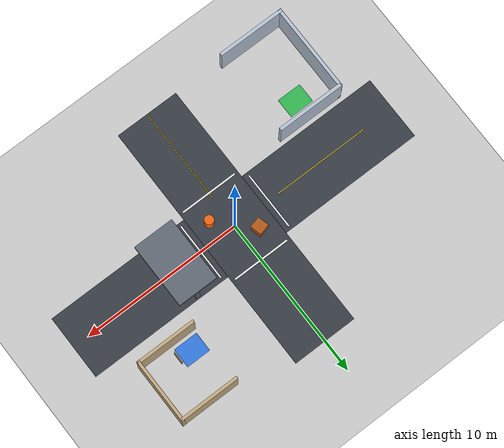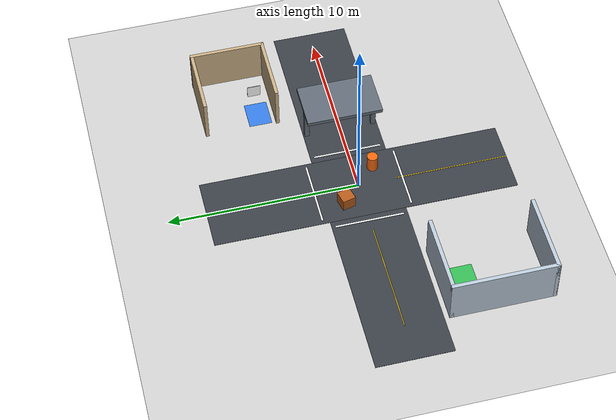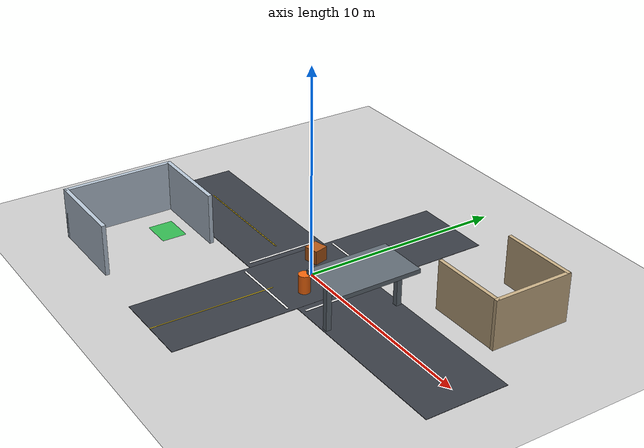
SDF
<?xml version="1.0"?>
<sdf version="1.6">
  <world name="bioshuttle_campus">
    <gravity>0 0 -9.81</gravity>
    <magnetic_field>6.0e-6 2.3e-5 -4.2e-5</magnetic_field>
    <physics name="ode_physics" type="ode">
      <max_step_size>0.001</max_step_size>
      <real_time_factor>1.0</real_time_factor>
      <real_time_update_rate>1000</real_time_update_rate>
    </physics>

    <scene>
      <ambient>0.55 0.55 0.55 1</ambient>
      <background>0.72 0.86 0.98 1</background>
      <shadows>true</shadows>
    </scene>

    <include><uri>model://sun</uri></include>
    <include><uri>model://ground_plane</uri></include>

    <!-- Cross-shaped campus road. -->
    <model name="east_west_road">
      <static>true</static>
      <link name="road">
        <pose>0 0 0.011 0 0 0</pose>
        <collision name="collision"><geometry><box><size>22 4 0.02</size></box></geometry></collision>
        <visual name="visual">
          <geometry><box><size>22 4 0.02</size></box></geometry>
          <material><ambient>0.22 0.24 0.27 1</ambient><diffuse>0.22 0.24 0.27 1</diffuse></material>
        </visual>
      </link>
    </model>
    <model name="north_south_road">
      <static>true</static>
      <link name="road">
        <pose>0 0 0.012 0 0 0</pose>
        <collision name="collision"><geometry><box><size>4 16 0.02</size></box></geometry></collision>
        <visual name="visual">
          <geometry><box><size>4 16 0.02</size></box></geometry>
          <material><ambient>0.22 0.24 0.27 1</ambient><diffuse>0.22 0.24 0.27 1</diffuse></material>
        </visual>
      </link>
    </model>

    <!-- Road center lines and intersection stop lines. -->
    <model name="road_markings">
      <static>true</static>
      <link name="markings">
        <visual name="east_line"><pose>-6 0 0.025 0 0 0</pose><geometry><box><size>6 0.05 0.01</size></box></geometry><material><ambient>0.95 0.80 0.10 1</ambient><diffuse>0.95 0.80 0.10 1</diffuse></material></visual>
        <visual name="west_line"><pose>6 0 0.025 0 0 0</pose><geometry><box><size>6 0.05 0.01</size></box></geometry><material><ambient>0.95 0.80 0.10 1</ambient><diffuse>0.95 0.80 0.10 1</diffuse></material></visual>
        <visual name="north_line"><pose>0 5 0.025 0 0 0</pose><geometry><box><size>0.05 6 0.01</size></box></geometry><material><ambient>0.95 0.80 0.10 1</ambient><diffuse>0.95 0.80 0.10 1</diffuse></material></visual>
        <visual name="south_line"><pose>0 -5 0.025 0 0 0</pose><geometry><box><size>0.05 6 0.01</size></box></geometry><material><ambient>0.95 0.80 0.10 1</ambient><diffuse>0.95 0.80 0.10 1</diffuse></material></visual>
        <visual name="stop_west"><pose>-2.35 0 0.03 0 0 0</pose><geometry><box><size>0.10 3.6 0.015</size></box></geometry><material><ambient>1 1 1 1</ambient><diffuse>1 1 1 1</diffuse></material></visual>
        <visual name="stop_east"><pose>2.35 0 0.03 0 0 0</pose><geometry><box><size>0.10 3.6 0.015</size></box></geometry><material><ambient>1 1 1 1</ambient><diffuse>1 1 1 1</diffuse></material></visual>
        <visual name="stop_south"><pose>0 -2.35 0.03 0 0 0</pose><geometry><box><size>3.6 0.10 0.015</size></box></geometry><material><ambient>1 1 1 1</ambient><diffuse>1 1 1 1</diffuse></material></visual>
        <visual name="stop_north"><pose>0 2.35 0.03 0 0 0</pose><geometry><box><size>3.6 0.10 0.015</size></box></geometry><material><ambient>1 1 1 1</ambient><diffuse>1 1 1 1</diffuse></material></visual>
      </link>
    </model>

    <!-- Laboratory pickup area: open toward the road on the east side. -->
    <model name="laboratory">
      <static>true</static>
      <pose>-7 -5 0 0 0 0</pose>
      <link name="walls">
        <collision name="back_collision"><pose>-2 0 1.25 0 0 0</pose><geometry><box><size>0.20 5.5 2.5</size></box></geometry></collision>
        <visual name="back"><pose>-2 0 1.25 0 0 0</pose><geometry><box><size>0.20 5.5 2.5</size></box></geometry><material><ambient>0.72 0.78 0.84 1</ambient><diffuse>0.72 0.78 0.84 1</diffuse></material></visual>
        <collision name="north_collision"><pose>0 2.65 1.25 0 0 0</pose><geometry><box><size>4.2 0.20 2.5</size></box></geometry></collision>
        <visual name="north"><pose>0 2.65 1.25 0 0 0</pose><geometry><box><size>4.2 0.20 2.5</size></box></geometry><material><ambient>0.72 0.78 0.84 1</ambient><diffuse>0.72 0.78 0.84 1</diffuse></material></visual>
        <collision name="south_collision"><pose>0 -2.65 1.25 0 0 0</pose><geometry><box><size>4.2 0.20 2.5</size></box></geometry></collision>
        <visual name="south"><pose>0 -2.65 1.25 0 0 0</pose><geometry><box><size>4.2 0.20 2.5</size></box></geometry><material><ambient>0.72 0.78 0.84 1</ambient><diffuse>0.72 0.78 0.84 1</diffuse></material></visual>
      </link>
    </model>

    <model name="pickup_zone">
      <static>true</static><pose>-7 -3.6 0.025 0 0 0</pose>
      <link name="zone"><visual name="visual"><geometry><box><size>1.5 1.2 0.015</size></box></geometry><material><ambient>0.10 0.75 0.25 0.8</ambient><diffuse>0.10 0.75 0.25 0.8</diffuse></material></visual></link>
    </model>

    <!-- School-gate handover point. -->
    <model name="handover_shelter">
      <static>true</static><pose>7 5 0 0 0 0</pose>
      <link name="shelter">
        <collision name="back_collision"><pose>1.8 0 1.2 0 0 0</pose><geometry><box><size>0.18 4.0 2.4</size></box></geometry></collision>
        <visual name="back"><pose>1.8 0 1.2 0 0 0</pose><geometry><box><size>0.18 4.0 2.4</size></box></geometry><material><ambient>0.78 0.68 0.52 1</ambient><diffuse>0.78 0.68 0.52 1</diffuse></material></visual>
        <collision name="north_collision"><pose>0 1.9 1.2 0 0 0</pose><geometry><box><size>3.7 0.18 2.4</size></box></geometry></collision>
        <visual name="north"><pose>0 1.9 1.2 0 0 0</pose><geometry><box><size>3.7 0.18 2.4</size></box></geometry><material><ambient>0.78 0.68 0.52 1</ambient><diffuse>0.78 0.68 0.52 1</diffuse></material></visual>
        <collision name="south_collision"><pose>0 -1.9 1.2 0 0 0</pose><geometry><box><size>3.7 0.18 2.4</size></box></geometry></collision>
        <visual name="south"><pose>0 -1.9 1.2 0 0 0</pose><geometry><box><size>3.7 0.18 2.4</size></box></geometry><material><ambient>0.78 0.68 0.52 1</ambient><diffuse>0.78 0.68 0.52 1</diffuse></material></visual>
      </link>
    </model>
    <model name="handover_zone">
      <static>true</static><pose>6 4 0.025 0 0 0</pose>
      <link name="zone"><visual name="visual"><geometry><box><size>1.5 1.2 0.015</size></box></geometry><material><ambient>0.10 0.45 0.95 0.8</ambient><diffuse>0.10 0.45 0.95 0.8</diffuse></material></visual></link>
    </model>

    <!-- A covered section represents a GPS-weak area. The simulated GPS node marks this rectangle as degraded. -->
    <model name="covered_walkway">
      <static>true</static><pose>4 0 0 0 0 0</pose>
      <link name="cover">
        <collision name="left_column_collision"><pose>0 1.8 1.1 0 0 0</pose><geometry><box><size>0.25 0.25 2.2</size></box></geometry></collision>
        <visual name="left_column"><pose>0 1.8 1.1 0 0 0</pose><geometry><box><size>0.25 0.25 2.2</size></box></geometry><material><ambient>0.38 0.42 0.46 1</ambient><diffuse>0.38 0.42 0.46 1</diffuse></material></visual>
        <collision name="right_column_collision"><pose>0 -1.8 1.1 0 0 0</pose><geometry><box><size>0.25 0.25 2.2</size></box></geometry></collision>
        <visual name="right_column"><pose>0 -1.8 1.1 0 0 0</pose><geometry><box><size>0.25 0.25 2.2</size></box></geometry><material><ambient>0.38 0.42 0.46 1</ambient><diffuse>0.38 0.42 0.46 1</diffuse></material></visual>
        <collision name="roof_collision"><pose>0 0 2.25 0 0 0</pose><geometry><box><size>2.5 4.0 0.20</size></box></geometry></collision>
        <visual name="roof"><pose>0 0 2.25 0 0 0</pose><geometry><box><size>2.5 4.0 0.20</size></box></geometry><material><ambient>0.38 0.42 0.46 1</ambient><diffuse>0.38 0.42 0.46 1</diffuse></material></visual>
      </link>
    </model>

    <!-- Static obstacles used by the AVOID state and Nav2 costmap tests. -->
    <model name="obstacle_crate">
      <static>true</static><pose>-1.0 0.9 0.35 0 0 0.25</pose>
      <link name="crate"><collision name="collision"><geometry><box><size>0.7 0.7 0.7</size></box></geometry></collision><visual name="visual"><geometry><box><size>0.7 0.7 0.7</size></box></geometry><material><ambient>0.70 0.35 0.10 1</ambient><diffuse>0.70 0.35 0.10 1</diffuse></material></visual></link>
    </model>
    <model name="obstacle_barrel">
      <static>true</static><pose>1.0 -1.0 0.45 0 0 0</pose>
      <link name="barrel"><collision name="collision"><geometry><cylinder><radius>0.28</radius><length>0.9</length></cylinder></geometry></collision><visual name="visual"><geometry><cylinder><radius>0.28</radius><length>0.9</length></cylinder></geometry><material><ambient>0.95 0.40 0.05 1</ambient><diffuse>0.95 0.40 0.05 1</diffuse></material></visual></link>
    </model>

    <!-- Fiducial-style board for camera visibility; the synthetic pose topic is published separately. -->
    <model name="apriltag_station_board">
      <static>true</static><pose>6.9 4 0.9 0 0 3.14159265</pose>
      <link name="board">
        <collision name="collision"><geometry><box><size>0.03 0.70 0.70</size></box></geometry></collision>
        <visual name="white"><geometry><box><size>0.035 0.70 0.70</size></box></geometry><material><ambient>1 1 1 1</ambient><diffuse>1 1 1 1</diffuse></material></visual>
        <visual name="black_top"><pose>-0.02 0 0.28 0 0 0</pose><geometry><box><size>0.04 0.60 0.10</size></box></geometry><material><ambient>0 0 0 1</ambient><diffuse>0 0 0 1</diffuse></material></visual>
        <visual name="black_bottom"><pose>-0.02 0 -0.28 0 0 0</pose><geometry><box><size>0.04 0.60 0.10</size></box></geometry><material><ambient>0 0 0 1</ambient><diffuse>0 0 0 1</diffuse></material></visual>
        <visual name="black_left"><pose>-0.02 0.28 0 0 0 0</pose><geometry><box><size>0.04 0.10 0.60</size></box></geometry><material><ambient>0 0 0 1</ambient><diffuse>0 0 0 1</diffuse></material></visual>
        <visual name="black_right"><pose>-0.02 -0.28 0 0 0 0</pose><geometry><box><size>0.04 0.10 0.60</size></box></geometry><material><ambient>0 0 0 1</ambient><diffuse>0 0 0 1</diffuse></material></visual>
        <visual name="black_center_a"><pose>-0.025 0.12 0.12 0 0 0</pose><geometry><box><size>0.045 0.16 0.16</size></box></geometry><material><ambient>0 0 0 1</ambient><diffuse>0 0 0 1</diffuse></material></visual>
        <visual name="black_center_b"><pose>-0.025 -0.12 -0.12 0 0 0</pose><geometry><box><size>0.045 0.16 0.16</size></box></geometry><material><ambient>0 0 0 1</ambient><diffuse>0 0 0 1</diffuse></material></visual>
      </link>
    </model>

    <gui fullscreen="0">
      <camera name="user_camera"><pose>-13 -15 15 0 0.58 0.72</pose><view_controller>orbit</view_controller></camera>
    </gui>
  </world>
</sdf>
